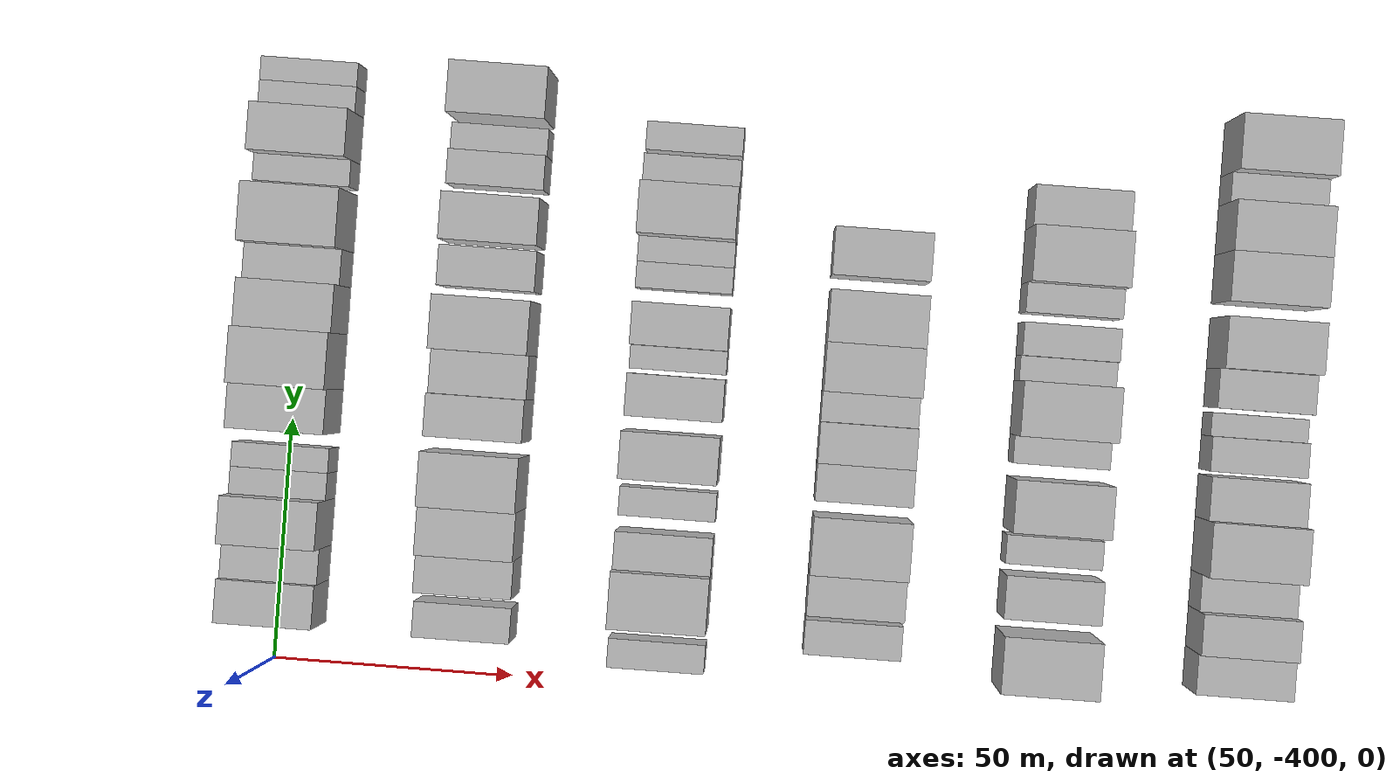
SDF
<sdf version="1.6">
 <world name="default">
  <model name="building_27">
   <static>1</static>
   <pose>50.0000 -387.3386 0 0.000000 0.000000 0.000000</pose>
   <link name="link">
    <pose>0 0 9.00 0 0 0</pose>
    <collision name="collision"><geometry><box><size>20.0000 8.8899 18.0000</size></box></geometry></collision>
    <visual name="visual">
     <cast_shadows>0</cast_shadows>
     <geometry><box><size>20.0000 8.8899 18.0000</size></box></geometry>
     <material>
      <script>
       <uri>model://HANNAS_wall/materials/scripts</uri>
       <uri>model://HANNAS_wall/materials/textures</uri>
       <name>vrc/HANNAS_wall</name>
      </script>
     </material>
    </visual>
   </link>
  </model>
  <model name="building_28">
   <static>1</static>
   <pose>50.0000 -379.2376 0 0.000000 0.000000 0.000000</pose>
   <link name="link">
    <pose>0 0 7.50 0 0 0</pose>
    <collision name="collision"><geometry><box><size>20.0000 7.3122 15.0000</size></box></geometry></collision>
    <visual name="visual">
     <cast_shadows>0</cast_shadows>
     <geometry><box><size>20.0000 7.3122 15.0000</size></box></geometry>
     <material>
      <script>
       <uri>model://HANNAS_wall/materials/scripts</uri>
       <uri>model://HANNAS_wall/materials/textures</uri>
       <name>vrc/HANNAS_wall</name>
      </script>
     </material>
    </visual>
   </link>
  </model>
  <model name="building_29">
   <static>1</static>
   <pose>50.0000 -370.6812 0 0.000000 0.000000 0.000000</pose>
   <link name="link">
    <pose>0 0 10.50 0 0 0</pose>
    <collision name="collision"><geometry><box><size>20.0000 9.8005 21.0000</size></box></geometry></collision>
    <visual name="visual">
     <cast_shadows>0</cast_shadows>
     <geometry><box><size>20.0000 9.8005 21.0000</size></box></geometry>
     <material>
      <script>
       <uri>model://HANNAS_wall/materials/scripts</uri>
       <uri>model://HANNAS_wall/materials/textures</uri>
       <name>vrc/HANNAS_wall</name>
      </script>
     </material>
    </visual>
   </link>
  </model>
  <model name="building_30">
   <static>1</static>
   <pose>50.0000 -362.9657 0 0.000000 0.000000 0.000000</pose>
   <link name="link">
    <pose>0 0 6.00 0 0 0</pose>
    <collision name="collision"><geometry><box><size>20.0000 5.6305 12.0000</size></box></geometry></collision>
    <visual name="visual">
     <cast_shadows>0</cast_shadows>
     <geometry><box><size>20.0000 5.6305 12.0000</size></box></geometry>
     <material>
      <script>
       <uri>model://HANNAS_wall/materials/scripts</uri>
       <uri>model://HANNAS_wall/materials/textures</uri>
       <name>vrc/HANNAS_wall</name>
      </script>
     </material>
    </visual>
   </link>
  </model>
  <model name="building_31">
   <static>1</static>
   <pose>50.0000 -357.5958 0 0.000000 0.000000 0.000000</pose>
   <link name="link">
    <pose>0 0 6.00 0 0 0</pose>
    <collision name="collision"><geometry><box><size>20.0000 5.1092 12.0000</size></box></geometry></collision>
    <visual name="visual">
     <cast_shadows>0</cast_shadows>
     <geometry><box><size>20.0000 5.1092 12.0000</size></box></geometry>
     <material>
      <script>
       <uri>model://HANNAS_wall/materials/scripts</uri>
       <uri>model://HANNAS_wall/materials/textures</uri>
       <name>vrc/HANNAS_wall</name>
      </script>
     </material>
    </visual>
   </link>
  </model>
  <model name="building_32">
   <static>1</static>
   <pose>50.0000 -347.4738 0 0.000000 0.000000 0.000000</pose>
   <link name="link">
    <pose>0 0 10.50 0 0 0</pose>
    <collision name="collision"><geometry><box><size>20.0000 9.1349 21.0000</size></box></geometry></collision>
    <visual name="visual">
     <cast_shadows>0</cast_shadows>
     <geometry><box><size>20.0000 9.1349 21.0000</size></box></geometry>
     <material>
      <script>
       <uri>model://HANNAS_wall/materials/scripts</uri>
       <uri>model://HANNAS_wall/materials/textures</uri>
       <name>vrc/HANNAS_wall</name>
      </script>
     </material>
    </visual>
   </link>
  </model>
  <model name="building_33">
   <static>1</static>
   <pose>50.0000 -337.1691 0 0.000000 0.000000 0.000000</pose>
   <link name="link">
    <pose>0 0 12.00 0 0 0</pose>
    <collision name="collision"><geometry><box><size>20.0000 11.4745 24.0000</size></box></geometry></collision>
    <visual name="visual">
     <cast_shadows>0</cast_shadows>
     <geometry><box><size>20.0000 11.4745 24.0000</size></box></geometry>
     <material>
      <script>
       <uri>model://HANNAS_wall/materials/scripts</uri>
       <uri>model://HANNAS_wall/materials/textures</uri>
       <name>vrc/HANNAS_wall</name>
      </script>
     </material>
    </visual>
   </link>
  </model>
  <model name="building_34">
   <static>1</static>
   <pose>50.0000 -326.5298 0 0.000000 0.000000 0.000000</pose>
   <link name="link">
    <pose>0 0 10.50 0 0 0</pose>
    <collision name="collision"><geometry><box><size>20.0000 9.8041 21.0000</size></box></geometry></collision>
    <visual name="visual">
     <cast_shadows>0</cast_shadows>
     <geometry><box><size>20.0000 9.8041 21.0000</size></box></geometry>
     <material>
      <script>
       <uri>model://HANNAS_wall/materials/scripts</uri>
       <uri>model://HANNAS_wall/materials/textures</uri>
       <name>vrc/HANNAS_wall</name>
      </script>
     </material>
    </visual>
   </link>
  </model>
  <model name="building_35">
   <static>1</static>
   <pose>50.0000 -317.9521 0 0.000000 0.000000 0.000000</pose>
   <link name="link">
    <pose>0 0 7.50 0 0 0</pose>
    <collision name="collision"><geometry><box><size>20.0000 7.3512 15.0000</size></box></geometry></collision>
    <visual name="visual">
     <cast_shadows>0</cast_shadows>
     <geometry><box><size>20.0000 7.3512 15.0000</size></box></geometry>
     <material>
      <script>
       <uri>model://HANNAS_wall/materials/scripts</uri>
       <uri>model://HANNAS_wall/materials/textures</uri>
       <name>vrc/HANNAS_wall</name>
      </script>
     </material>
    </visual>
   </link>
  </model>
  <model name="building_36">
   <static>1</static>
   <pose>50.0000 -308.2831 0 0.000000 0.000000 0.000000</pose>
   <link name="link">
    <pose>0 0 12.00 0 0 0</pose>
    <collision name="collision"><geometry><box><size>20.0000 11.9869 24.0000</size></box></geometry></collision>
    <visual name="visual">
     <cast_shadows>0</cast_shadows>
     <geometry><box><size>20.0000 11.9869 24.0000</size></box></geometry>
     <material>
      <script>
       <uri>model://HANNAS_wall/materials/scripts</uri>
       <uri>model://HANNAS_wall/materials/textures</uri>
       <name>vrc/HANNAS_wall</name>
      </script>
     </material>
    </visual>
   </link>
  </model>
  <model name="building_37">
   <static>1</static>
   <pose>50.0000 -298.5193 0 0.000000 0.000000 0.000000</pose>
   <link name="link">
    <pose>0 0 6.00 0 0 0</pose>
    <collision name="collision"><geometry><box><size>20.0000 5.5406 12.0000</size></box></geometry></collision>
    <visual name="visual">
     <cast_shadows>0</cast_shadows>
     <geometry><box><size>20.0000 5.5406 12.0000</size></box></geometry>
     <material>
      <script>
       <uri>model://HANNAS_wall/materials/scripts</uri>
       <uri>model://HANNAS_wall/materials/textures</uri>
       <name>vrc/HANNAS_wall</name>
      </script>
     </material>
    </visual>
   </link>
  </model>
  <model name="building_38">
   <static>1</static>
   <pose>50.0000 -290.8896 0 0.000000 0.000000 0.000000</pose>
   <link name="link">
    <pose>0 0 10.50 0 0 0</pose>
    <collision name="collision"><geometry><box><size>20.0000 9.7188 21.0000</size></box></geometry></collision>
    <visual name="visual">
     <cast_shadows>0</cast_shadows>
     <geometry><box><size>20.0000 9.7188 21.0000</size></box></geometry>
     <material>
      <script>
       <uri>model://HANNAS_wall/materials/scripts</uri>
       <uri>model://HANNAS_wall/materials/textures</uri>
       <name>vrc/HANNAS_wall</name>
      </script>
     </material>
    </visual>
   </link>
  </model>
  <model name="building_39">
   <static>1</static>
   <pose>50.0000 -283.3686 0 0.000000 0.000000 0.000000</pose>
   <link name="link">
    <pose>0 0 6.00 0 0 0</pose>
    <collision name="collision"><geometry><box><size>20.0000 5.3231 12.0000</size></box></geometry></collision>
    <visual name="visual">
     <cast_shadows>0</cast_shadows>
     <geometry><box><size>20.0000 5.3231 12.0000</size></box></geometry>
     <material>
      <script>
       <uri>model://HANNAS_wall/materials/scripts</uri>
       <uri>model://HANNAS_wall/materials/textures</uri>
       <name>vrc/HANNAS_wall</name>
      </script>
     </material>
    </visual>
   </link>
  </model>
  <model name="building_40">
   <static>1</static>
   <pose>50.0000 -278.2641 0 0.000000 0.000000 0.000000</pose>
   <link name="link">
    <pose>0 0 6.00 0 0 0</pose>
    <collision name="collision"><geometry><box><size>20.0000 4.8858 12.0000</size></box></geometry></collision>
    <visual name="visual">
     <cast_shadows>0</cast_shadows>
     <geometry><box><size>20.0000 4.8858 12.0000</size></box></geometry>
     <material>
      <script>
       <uri>model://HANNAS_wall/materials/scripts</uri>
       <uri>model://HANNAS_wall/materials/textures</uri>
       <name>vrc/HANNAS_wall</name>
      </script>
     </material>
    </visual>
   </link>
  </model>
  <model name="building_167">
   <static>1</static>
   <pose>90.0000 -388.2750 0 0.000000 0.000000 0.000000</pose>
   <link name="link">
    <pose>0 0 7.50 0 0 0</pose>
    <collision name="collision"><geometry><box><size>20.0000 7.3027 15.0000</size></box></geometry></collision>
    <visual name="visual">
     <cast_shadows>0</cast_shadows>
     <geometry><box><size>20.0000 7.3027 15.0000</size></box></geometry>
     <material>
      <script>
       <uri>model://HANNAS_wall/materials/scripts</uri>
       <uri>model://HANNAS_wall/materials/textures</uri>
       <name>vrc/HANNAS_wall</name>
      </script>
     </material>
    </visual>
   </link>
  </model>
  <model name="building_168">
   <static>1</static>
   <pose>90.0000 -378.7106 0 0.000000 0.000000 0.000000</pose>
   <link name="link">
    <pose>0 0 9.00 0 0 0</pose>
    <collision name="collision"><geometry><box><size>20.0000 7.8261 18.0000</size></box></geometry></collision>
    <visual name="visual">
     <cast_shadows>0</cast_shadows>
     <geometry><box><size>20.0000 7.8261 18.0000</size></box></geometry>
     <material>
      <script>
       <uri>model://HANNAS_wall/materials/scripts</uri>
       <uri>model://HANNAS_wall/materials/textures</uri>
       <name>vrc/HANNAS_wall</name>
      </script>
     </material>
    </visual>
   </link>
  </model>
  <model name="building_169">
   <static>1</static>
   <pose>90.0000 -369.8301 0 0.000000 0.000000 0.000000</pose>
   <link name="link">
    <pose>0 0 10.50 0 0 0</pose>
    <collision name="collision"><geometry><box><size>20.0000 9.9350 21.0000</size></box></geometry></collision>
    <visual name="visual">
     <cast_shadows>0</cast_shadows>
     <geometry><box><size>20.0000 9.9350 21.0000</size></box></geometry>
     <material>
      <script>
       <uri>model://HANNAS_wall/materials/scripts</uri>
       <uri>model://HANNAS_wall/materials/textures</uri>
       <name>vrc/HANNAS_wall</name>
      </script>
     </material>
    </visual>
   </link>
  </model>
  <model name="building_170">
   <static>1</static>
   <pose>90.0000 -359.2874 0 0.000000 0.000000 0.000000</pose>
   <link name="link">
    <pose>0 0 12.00 0 0 0</pose>
    <collision name="collision"><geometry><box><size>20.0000 11.1504 24.0000</size></box></geometry></collision>
    <visual name="visual">
     <cast_shadows>0</cast_shadows>
     <geometry><box><size>20.0000 11.1504 24.0000</size></box></geometry>
     <material>
      <script>
       <uri>model://HANNAS_wall/materials/scripts</uri>
       <uri>model://HANNAS_wall/materials/textures</uri>
       <name>vrc/HANNAS_wall</name>
      </script>
     </material>
    </visual>
   </link>
  </model>
  <model name="building_171">
   <static>1</static>
   <pose>90.0000 -346.3574 0 0.000000 0.000000 0.000000</pose>
   <link name="link">
    <pose>0 0 10.50 0 0 0</pose>
    <collision name="collision"><geometry><box><size>20.0000 8.7096 21.0000</size></box></geometry></collision>
    <visual name="visual">
     <cast_shadows>0</cast_shadows>
     <geometry><box><size>20.0000 8.7096 21.0000</size></box></geometry>
     <material>
      <script>
       <uri>model://HANNAS_wall/materials/scripts</uri>
       <uri>model://HANNAS_wall/materials/textures</uri>
       <name>vrc/HANNAS_wall</name>
      </script>
     </material>
    </visual>
   </link>
  </model>
  <model name="building_172">
   <static>1</static>
   <pose>90.0000 -337.5082 0 0.000000 0.000000 0.000000</pose>
   <link name="link">
    <pose>0 0 9.00 0 0 0</pose>
    <collision name="collision"><geometry><box><size>20.0000 8.9888 18.0000</size></box></geometry></collision>
    <visual name="visual">
     <cast_shadows>0</cast_shadows>
     <geometry><box><size>20.0000 8.9888 18.0000</size></box></geometry>
     <material>
      <script>
       <uri>model://HANNAS_wall/materials/scripts</uri>
       <uri>model://HANNAS_wall/materials/textures</uri>
       <name>vrc/HANNAS_wall</name>
      </script>
     </material>
    </visual>
   </link>
  </model>
  <model name="building_173">
   <static>1</static>
   <pose>90.0000 -327.5312 0 0.000000 0.000000 0.000000</pose>
   <link name="link">
    <pose>0 0 12.00 0 0 0</pose>
    <collision name="collision"><geometry><box><size>20.0000 10.9650 24.0000</size></box></geometry></collision>
    <visual name="visual">
     <cast_shadows>0</cast_shadows>
     <geometry><box><size>20.0000 10.9650 24.0000</size></box></geometry>
     <material>
      <script>
       <uri>model://HANNAS_wall/materials/scripts</uri>
       <uri>model://HANNAS_wall/materials/textures</uri>
       <name>vrc/HANNAS_wall</name>
      </script>
     </material>
    </visual>
   </link>
  </model>
  <model name="building_174">
   <static>1</static>
   <pose>90.0000 -315.9036 0 0.000000 0.000000 0.000000</pose>
   <link name="link">
    <pose>0 0 9.00 0 0 0</pose>
    <collision name="collision"><geometry><box><size>20.0000 8.2903 18.0000</size></box></geometry></collision>
    <visual name="visual">
     <cast_shadows>0</cast_shadows>
     <geometry><box><size>20.0000 8.2903 18.0000</size></box></geometry>
     <material>
      <script>
       <uri>model://HANNAS_wall/materials/scripts</uri>
       <uri>model://HANNAS_wall/materials/textures</uri>
       <name>vrc/HANNAS_wall</name>
      </script>
     </material>
    </visual>
   </link>
  </model>
  <model name="building_175">
   <static>1</static>
   <pose>90.0000 -305.9424 0 0.000000 0.000000 0.000000</pose>
   <link name="link">
    <pose>0 0 10.50 0 0 0</pose>
    <collision name="collision"><geometry><box><size>20.0000 9.6320 21.0000</size></box></geometry></collision>
    <visual name="visual">
     <cast_shadows>0</cast_shadows>
     <geometry><box><size>20.0000 9.6320 21.0000</size></box></geometry>
     <material>
      <script>
       <uri>model://HANNAS_wall/materials/scripts</uri>
       <uri>model://HANNAS_wall/materials/textures</uri>
       <name>vrc/HANNAS_wall</name>
      </script>
     </material>
    </visual>
   </link>
  </model>
  <model name="building_176">
   <static>1</static>
   <pose>90.0000 -295.5863 0 0.000000 0.000000 0.000000</pose>
   <link name="link">
    <pose>0 0 7.50 0 0 0</pose>
    <collision name="collision"><geometry><box><size>20.0000 7.0801 15.0000</size></box></geometry></collision>
    <visual name="visual">
     <cast_shadows>0</cast_shadows>
     <geometry><box><size>20.0000 7.0801 15.0000</size></box></geometry>
     <material>
      <script>
       <uri>model://HANNAS_wall/materials/scripts</uri>
       <uri>model://HANNAS_wall/materials/textures</uri>
       <name>vrc/HANNAS_wall</name>
      </script>
     </material>
    </visual>
   </link>
  </model>
  <model name="building_177">
   <static>1</static>
   <pose>90.0000 -289.2132 0 0.000000 0.000000 0.000000</pose>
   <link name="link">
    <pose>0 0 6.00 0 0 0</pose>
    <collision name="collision"><geometry><box><size>20.0000 5.6662 12.0000</size></box></geometry></collision>
    <visual name="visual">
     <cast_shadows>0</cast_shadows>
     <geometry><box><size>20.0000 5.6662 12.0000</size></box></geometry>
     <material>
      <script>
       <uri>model://HANNAS_wall/materials/scripts</uri>
       <uri>model://HANNAS_wall/materials/textures</uri>
       <name>vrc/HANNAS_wall</name>
      </script>
     </material>
    </visual>
   </link>
  </model>
  <model name="building_178">
   <static>1</static>
   <pose>90.0000 -280.1520 0 0.000000 0.000000 0.000000</pose>
   <link name="link">
    <pose>0 0 12.00 0 0 0</pose>
    <collision name="collision"><geometry><box><size>20.0000 10.4561 24.0000</size></box></geometry></collision>
    <visual name="visual">
     <cast_shadows>0</cast_shadows>
     <geometry><box><size>20.0000 10.4561 24.0000</size></box></geometry>
     <material>
      <script>
       <uri>model://HANNAS_wall/materials/scripts</uri>
       <uri>model://HANNAS_wall/materials/textures</uri>
       <name>vrc/HANNAS_wall</name>
      </script>
     </material>
    </visual>
   </link>
  </model>
  <model name="building_299">
   <static>1</static>
   <pose>130.0000 -392.4256 0 0.000000 0.000000 0.000000</pose>
   <link name="link">
    <pose>0 0 6.00 0 0 0</pose>
    <collision name="collision"><geometry><box><size>20.0000 5.9776 12.0000</size></box></geometry></collision>
    <visual name="visual">
     <cast_shadows>0</cast_shadows>
     <geometry><box><size>20.0000 5.9776 12.0000</size></box></geometry>
     <material>
      <script>
       <uri>model://HANNAS_wall/materials/scripts</uri>
       <uri>model://HANNAS_wall/materials/textures</uri>
       <name>vrc/HANNAS_wall</name>
      </script>
     </material>
    </visual>
   </link>
  </model>
  <model name="building_300">
   <static>1</static>
   <pose>130.0000 -380.6523 0 0.000000 0.000000 0.000000</pose>
   <link name="link">
    <pose>0 0 12.00 0 0 0</pose>
    <collision name="collision"><geometry><box><size>20.0000 11.5692 24.0000</size></box></geometry></collision>
    <visual name="visual">
     <cast_shadows>0</cast_shadows>
     <geometry><box><size>20.0000 11.5692 24.0000</size></box></geometry>
     <material>
      <script>
       <uri>model://HANNAS_wall/materials/scripts</uri>
       <uri>model://HANNAS_wall/materials/textures</uri>
       <name>vrc/HANNAS_wall</name>
      </script>
     </material>
    </visual>
   </link>
  </model>
  <model name="building_301">
   <static>1</static>
   <pose>130.0000 -370.9849 0 0.000000 0.000000 0.000000</pose>
   <link name="link">
    <pose>0 0 9.00 0 0 0</pose>
    <collision name="collision"><geometry><box><size>20.0000 7.7655 18.0000</size></box></geometry></collision>
    <visual name="visual">
     <cast_shadows>0</cast_shadows>
     <geometry><box><size>20.0000 7.7655 18.0000</size></box></geometry>
     <material>
      <script>
       <uri>model://HANNAS_wall/materials/scripts</uri>
       <uri>model://HANNAS_wall/materials/textures</uri>
       <name>vrc/HANNAS_wall</name>
      </script>
     </material>
    </visual>
   </link>
  </model>
  <model name="building_302">
   <static>1</static>
   <pose>130.0000 -361.1385 0 0.000000 0.000000 0.000000</pose>
   <link name="link">
    <pose>0 0 6.00 0 0 0</pose>
    <collision name="collision"><geometry><box><size>20.0000 5.9273 12.0000</size></box></geometry></collision>
    <visual name="visual">
     <cast_shadows>0</cast_shadows>
     <geometry><box><size>20.0000 5.9273 12.0000</size></box></geometry>
     <material>
      <script>
       <uri>model://HANNAS_wall/materials/scripts</uri>
       <uri>model://HANNAS_wall/materials/textures</uri>
       <name>vrc/HANNAS_wall</name>
      </script>
     </material>
    </visual>
   </link>
  </model>
  <model name="building_303">
   <static>1</static>
   <pose>130.0000 -351.3727 0 0.000000 0.000000 0.000000</pose>
   <link name="link">
    <pose>0 0 12.00 0 0 0</pose>
    <collision name="collision"><geometry><box><size>20.0000 9.6043 24.0000</size></box></geometry></collision>
    <visual name="visual">
     <cast_shadows>0</cast_shadows>
     <geometry><box><size>20.0000 9.6043 24.0000</size></box></geometry>
     <material>
      <script>
       <uri>model://HANNAS_wall/materials/scripts</uri>
       <uri>model://HANNAS_wall/materials/textures</uri>
       <name>vrc/HANNAS_wall</name>
      </script>
     </material>
    </visual>
   </link>
  </model>
  <model name="building_304">
   <static>1</static>
   <pose>130.0000 -339.2307 0 0.000000 0.000000 0.000000</pose>
   <link name="link">
    <pose>0 0 9.00 0 0 0</pose>
    <collision name="collision"><geometry><box><size>20.0000 8.6798 18.0000</size></box></geometry></collision>
    <visual name="visual">
     <cast_shadows>0</cast_shadows>
     <geometry><box><size>20.0000 8.6798 18.0000</size></box></geometry>
     <material>
      <script>
       <uri>model://HANNAS_wall/materials/scripts</uri>
       <uri>model://HANNAS_wall/materials/textures</uri>
       <name>vrc/HANNAS_wall</name>
      </script>
     </material>
    </visual>
   </link>
  </model>
  <model name="building_305">
   <static>1</static>
   <pose>130.0000 -331.4749 0 0.000000 0.000000 0.000000</pose>
   <link name="link">
    <pose>0 0 6.00 0 0 0</pose>
    <collision name="collision"><geometry><box><size>20.0000 4.8317 12.0000</size></box></geometry></collision>
    <visual name="visual">
     <cast_shadows>0</cast_shadows>
     <geometry><box><size>20.0000 4.8317 12.0000</size></box></geometry>
     <material>
      <script>
       <uri>model://HANNAS_wall/materials/scripts</uri>
       <uri>model://HANNAS_wall/materials/textures</uri>
       <name>vrc/HANNAS_wall</name>
      </script>
     </material>
    </visual>
   </link>
  </model>
  <model name="building_306">
   <static>1</static>
   <pose>130.0000 -324.6802 0 0.000000 0.000000 0.000000</pose>
   <link name="link">
    <pose>0 0 9.00 0 0 0</pose>
    <collision name="collision"><geometry><box><size>20.0000 8.7577 18.0000</size></box></geometry></collision>
    <visual name="visual">
     <cast_shadows>0</cast_shadows>
     <geometry><box><size>20.0000 8.7577 18.0000</size></box></geometry>
     <material>
      <script>
       <uri>model://HANNAS_wall/materials/scripts</uri>
       <uri>model://HANNAS_wall/materials/textures</uri>
       <name>vrc/HANNAS_wall</name>
      </script>
     </material>
    </visual>
   </link>
  </model>
  <model name="building_307">
   <static>1</static>
   <pose>130.0000 -314.5942 0 0.000000 0.000000 0.000000</pose>
   <link name="link">
    <pose>0 0 6.00 0 0 0</pose>
    <collision name="collision"><geometry><box><size>20.0000 5.4141 12.0000</size></box></geometry></collision>
    <visual name="visual">
     <cast_shadows>0</cast_shadows>
     <geometry><box><size>20.0000 5.4141 12.0000</size></box></geometry>
     <material>
      <script>
       <uri>model://HANNAS_wall/materials/scripts</uri>
       <uri>model://HANNAS_wall/materials/textures</uri>
       <name>vrc/HANNAS_wall</name>
      </script>
     </material>
    </visual>
   </link>
  </model>
  <model name="building_308">
   <static>1</static>
   <pose>130.0000 -309.2707 0 0.000000 0.000000 0.000000</pose>
   <link name="link">
    <pose>0 0 6.00 0 0 0</pose>
    <collision name="collision"><geometry><box><size>20.0000 5.2329 12.0000</size></box></geometry></collision>
    <visual name="visual">
     <cast_shadows>0</cast_shadows>
     <geometry><box><size>20.0000 5.2329 12.0000</size></box></geometry>
     <material>
      <script>
       <uri>model://HANNAS_wall/materials/scripts</uri>
       <uri>model://HANNAS_wall/materials/textures</uri>
       <name>vrc/HANNAS_wall</name>
      </script>
     </material>
    </visual>
   </link>
  </model>
  <model name="building_309">
   <static>1</static>
   <pose>130.0000 -301.3387 0 0.000000 0.000000 0.000000</pose>
   <link name="link">
    <pose>0 0 12.00 0 0 0</pose>
    <collision name="collision"><geometry><box><size>20.0000 10.6312 24.0000</size></box></geometry></collision>
    <visual name="visual">
     <cast_shadows>0</cast_shadows>
     <geometry><box><size>20.0000 10.6312 24.0000</size></box></geometry>
     <material>
      <script>
       <uri>model://HANNAS_wall/materials/scripts</uri>
       <uri>model://HANNAS_wall/materials/textures</uri>
       <name>vrc/HANNAS_wall</name>
      </script>
     </material>
    </visual>
   </link>
  </model>
  <model name="building_310">
   <static>1</static>
   <pose>130.0000 -292.9895 0 0.000000 0.000000 0.000000</pose>
   <link name="link">
    <pose>0 0 7.50 0 0 0</pose>
    <collision name="collision"><geometry><box><size>20.0000 6.0672 15.0000</size></box></geometry></collision>
    <visual name="visual">
     <cast_shadows>0</cast_shadows>
     <geometry><box><size>20.0000 6.0672 15.0000</size></box></geometry>
     <material>
      <script>
       <uri>model://HANNAS_wall/materials/scripts</uri>
       <uri>model://HANNAS_wall/materials/textures</uri>
       <name>vrc/HANNAS_wall</name>
      </script>
     </material>
    </visual>
   </link>
  </model>
  <model name="building_311">
   <static>1</static>
   <pose>130.0000 -286.0314 0 0.000000 0.000000 0.000000</pose>
   <link name="link">
    <pose>0 0 6.00 0 0 0</pose>
    <collision name="collision"><geometry><box><size>20.0000 5.8489 12.0000</size></box></geometry></collision>
    <visual name="visual">
     <cast_shadows>0</cast_shadows>
     <geometry><box><size>20.0000 5.8489 12.0000</size></box></geometry>
     <material>
      <script>
       <uri>model://HANNAS_wall/materials/scripts</uri>
       <uri>model://HANNAS_wall/materials/textures</uri>
       <name>vrc/HANNAS_wall</name>
      </script>
     </material>
    </visual>
   </link>
  </model>
  <model name="building_429">
   <static>1</static>
   <pose>170.0000 -385.8225 0 0.000000 0.000000 0.000000</pose>
   <link name="link">
    <pose>0 0 7.50 0 0 0</pose>
    <collision name="collision"><geometry><box><size>20.0000 7.0767 15.0000</size></box></geometry></collision>
    <visual name="visual">
     <cast_shadows>0</cast_shadows>
     <geometry><box><size>20.0000 7.0767 15.0000</size></box></geometry>
     <material>
      <script>
       <uri>model://HANNAS_wall/materials/scripts</uri>
       <uri>model://HANNAS_wall/materials/textures</uri>
       <name>vrc/HANNAS_wall</name>
      </script>
     </material>
    </visual>
   </link>
  </model>
  <model name="building_430">
   <static>1</static>
   <pose>170.0000 -376.9427 0 0.000000 0.000000 0.000000</pose>
   <link name="link">
    <pose>0 0 9.00 0 0 0</pose>
    <collision name="collision"><geometry><box><size>20.0000 8.6830 18.0000</size></box></geometry></collision>
    <visual name="visual">
     <cast_shadows>0</cast_shadows>
     <geometry><box><size>20.0000 8.6830 18.0000</size></box></geometry>
     <material>
      <script>
       <uri>model://HANNAS_wall/materials/scripts</uri>
       <uri>model://HANNAS_wall/materials/textures</uri>
       <name>vrc/HANNAS_wall</name>
      </script>
     </material>
    </visual>
   </link>
  </model>
  <model name="building_431">
   <static>1</static>
   <pose>170.0000 -366.7267 0 0.000000 0.000000 0.000000</pose>
   <link name="link">
    <pose>0 0 12.00 0 0 0</pose>
    <collision name="collision"><geometry><box><size>20.0000 11.7490 24.0000</size></box></geometry></collision>
    <visual name="visual">
     <cast_shadows>0</cast_shadows>
     <geometry><box><size>20.0000 11.7490 24.0000</size></box></geometry>
     <material>
      <script>
       <uri>model://HANNAS_wall/materials/scripts</uri>
       <uri>model://HANNAS_wall/materials/textures</uri>
       <name>vrc/HANNAS_wall</name>
      </script>
     </material>
    </visual>
   </link>
  </model>
  <model name="building_432">
   <static>1</static>
   <pose>170.0000 -354.0505 0 0.000000 0.000000 0.000000</pose>
   <link name="link">
    <pose>0 0 9.00 0 0 0</pose>
    <collision name="collision"><geometry><box><size>20.0000 7.6032 18.0000</size></box></geometry></collision>
    <visual name="visual">
     <cast_shadows>0</cast_shadows>
     <geometry><box><size>20.0000 7.6032 18.0000</size></box></geometry>
     <material>
      <script>
       <uri>model://HANNAS_wall/materials/scripts</uri>
       <uri>model://HANNAS_wall/materials/textures</uri>
       <name>vrc/HANNAS_wall</name>
      </script>
     </material>
    </visual>
   </link>
  </model>
  <model name="building_433">
   <static>1</static>
   <pose>170.0000 -346.0285 0 0.000000 0.000000 0.000000</pose>
   <link name="link">
    <pose>0 0 9.00 0 0 0</pose>
    <collision name="collision"><geometry><box><size>20.0000 8.4407 18.0000</size></box></geometry></collision>
    <visual name="visual">
     <cast_shadows>0</cast_shadows>
     <geometry><box><size>20.0000 8.4407 18.0000</size></box></geometry>
     <material>
      <script>
       <uri>model://HANNAS_wall/materials/scripts</uri>
       <uri>model://HANNAS_wall/materials/textures</uri>
       <name>vrc/HANNAS_wall</name>
      </script>
     </material>
    </visual>
   </link>
  </model>
  <model name="building_434">
   <static>1</static>
   <pose>170.0000 -338.6864 0 0.000000 0.000000 0.000000</pose>
   <link name="link">
    <pose>0 0 7.50 0 0 0</pose>
    <collision name="collision"><geometry><box><size>20.0000 6.2435 15.0000</size></box></geometry></collision>
    <visual name="visual">
     <cast_shadows>0</cast_shadows>
     <geometry><box><size>20.0000 6.2435 15.0000</size></box></geometry>
     <material>
      <script>
       <uri>model://HANNAS_wall/materials/scripts</uri>
       <uri>model://HANNAS_wall/materials/textures</uri>
       <name>vrc/HANNAS_wall</name>
      </script>
     </material>
    </visual>
   </link>
  </model>
  <model name="building_435">
   <static>1</static>
   <pose>170.0000 -330.5751 0 0.000000 0.000000 0.000000</pose>
   <link name="link">
    <pose>0 0 12.00 0 0 0</pose>
    <collision name="collision"><geometry><box><size>20.0000 9.9790 24.0000</size></box></geometry></collision>
    <visual name="visual">
     <cast_shadows>0</cast_shadows>
     <geometry><box><size>20.0000 9.9790 24.0000</size></box></geometry>
     <material>
      <script>
       <uri>model://HANNAS_wall/materials/scripts</uri>
       <uri>model://HANNAS_wall/materials/textures</uri>
       <name>vrc/HANNAS_wall</name>
      </script>
     </material>
    </visual>
   </link>
  </model>
  <model name="building_436">
   <static>1</static>
   <pose>170.0000 -320.2825 0 0.000000 0.000000 0.000000</pose>
   <link name="link">
    <pose>0 0 12.00 0 0 0</pose>
    <collision name="collision"><geometry><box><size>20.0000 10.6062 24.0000</size></box></geometry></collision>
    <visual name="visual">
     <cast_shadows>0</cast_shadows>
     <geometry><box><size>20.0000 10.6062 24.0000</size></box></geometry>
     <material>
      <script>
       <uri>model://HANNAS_wall/materials/scripts</uri>
       <uri>model://HANNAS_wall/materials/textures</uri>
       <name>vrc/HANNAS_wall</name>
      </script>
     </material>
    </visual>
   </link>
  </model>
  <model name="building_437">
   <static>1</static>
   <pose>170.0000 -307.0733 0 0.000000 0.000000 0.000000</pose>
   <link name="link">
    <pose>0 0 10.50 0 0 0</pose>
    <collision name="collision"><geometry><box><size>20.0000 9.8121 21.0000</size></box></geometry></collision>
    <visual name="visual">
     <cast_shadows>0</cast_shadows>
     <geometry><box><size>20.0000 9.8121 21.0000</size></box></geometry>
     <material>
      <script>
       <uri>model://HANNAS_wall/materials/scripts</uri>
       <uri>model://HANNAS_wall/materials/textures</uri>
       <name>vrc/HANNAS_wall</name>
      </script>
     </material>
    </visual>
   </link>
  </model>
  <model name="building_556">
   <static>1</static>
   <pose>210.0000 -387.6806 0 0.000000 0.000000 0.000000</pose>
   <link name="link">
    <pose>0 0 12.00 0 0 0</pose>
    <collision name="collision"><geometry><box><size>20.0000 11.6092 24.0000</size></box></geometry></collision>
    <visual name="visual">
     <cast_shadows>0</cast_shadows>
     <geometry><box><size>20.0000 11.6092 24.0000</size></box></geometry>
     <material>
      <script>
       <uri>model://HANNAS_wall/materials/scripts</uri>
       <uri>model://HANNAS_wall/materials/textures</uri>
       <name>vrc/HANNAS_wall</name>
      </script>
     </material>
    </visual>
   </link>
  </model>
  <model name="building_557">
   <static>1</static>
   <pose>210.0000 -374.4348 0 0.000000 0.000000 0.000000</pose>
   <link name="link">
    <pose>0 0 9.00 0 0 0</pose>
    <collision name="collision"><geometry><box><size>20.0000 8.8822 18.0000</size></box></geometry></collision>
    <visual name="visual">
     <cast_shadows>0</cast_shadows>
     <geometry><box><size>20.0000 8.8822 18.0000</size></box></geometry>
     <material>
      <script>
       <uri>model://HANNAS_wall/materials/scripts</uri>
       <uri>model://HANNAS_wall/materials/textures</uri>
       <name>vrc/HANNAS_wall</name>
      </script>
     </material>
    </visual>
   </link>
  </model>
  <model name="building_558">
   <static>1</static>
   <pose>210.0000 -365.0340 0 0.000000 0.000000 0.000000</pose>
   <link name="link">
    <pose>0 0 6.00 0 0 0</pose>
    <collision name="collision"><geometry><box><size>20.0000 5.9195 12.0000</size></box></geometry></collision>
    <visual name="visual">
     <cast_shadows>0</cast_shadows>
     <geometry><box><size>20.0000 5.9195 12.0000</size></box></geometry>
     <material>
      <script>
       <uri>model://HANNAS_wall/materials/scripts</uri>
       <uri>model://HANNAS_wall/materials/textures</uri>
       <name>vrc/HANNAS_wall</name>
      </script>
     </material>
    </visual>
   </link>
  </model>
  <model name="building_559">
   <static>1</static>
   <pose>210.0000 -355.7057 0 0.000000 0.000000 0.000000</pose>
   <link name="link">
    <pose>0 0 12.00 0 0 0</pose>
    <collision name="collision"><geometry><box><size>20.0000 10.7371 24.0000</size></box></geometry></collision>
    <visual name="visual">
     <cast_shadows>0</cast_shadows>
     <geometry><box><size>20.0000 10.7371 24.0000</size></box></geometry>
     <material>
      <script>
       <uri>model://HANNAS_wall/materials/scripts</uri>
       <uri>model://HANNAS_wall/materials/textures</uri>
       <name>vrc/HANNAS_wall</name>
      </script>
     </material>
    </visual>
   </link>
  </model>
  <model name="building_560">
   <static>1</static>
   <pose>210.0000 -344.4649 0 0.000000 0.000000 0.000000</pose>
   <link name="link">
    <pose>0 0 6.00 0 0 0</pose>
    <collision name="collision"><geometry><box><size>20.0000 5.7444 12.0000</size></box></geometry></collision>
    <visual name="visual">
     <cast_shadows>0</cast_shadows>
     <geometry><box><size>20.0000 5.7444 12.0000</size></box></geometry>
     <material>
      <script>
       <uri>model://HANNAS_wall/materials/scripts</uri>
       <uri>model://HANNAS_wall/materials/textures</uri>
       <name>vrc/HANNAS_wall</name>
      </script>
     </material>
    </visual>
   </link>
  </model>
  <model name="building_561">
   <static>1</static>
   <pose>210.0000 -335.9931 0 0.000000 0.000000 0.000000</pose>
   <link name="link">
    <pose>0 0 12.00 0 0 0</pose>
    <collision name="collision"><geometry><box><size>20.0000 11.1991 24.0000</size></box></geometry></collision>
    <visual name="visual">
     <cast_shadows>0</cast_shadows>
     <geometry><box><size>20.0000 11.1991 24.0000</size></box></geometry>
     <material>
      <script>
       <uri>model://HANNAS_wall/materials/scripts</uri>
       <uri>model://HANNAS_wall/materials/textures</uri>
       <name>vrc/HANNAS_wall</name>
      </script>
     </material>
    </visual>
   </link>
  </model>
  <model name="building_562">
   <static>1</static>
   <pose>210.0000 -327.8169 0 0.000000 0.000000 0.000000</pose>
   <link name="link">
    <pose>0 0 6.00 0 0 0</pose>
    <collision name="collision"><geometry><box><size>20.0000 5.1532 12.0000</size></box></geometry></collision>
    <visual name="visual">
     <cast_shadows>0</cast_shadows>
     <geometry><box><size>20.0000 5.1532 12.0000</size></box></geometry>
     <material>
      <script>
       <uri>model://HANNAS_wall/materials/scripts</uri>
       <uri>model://HANNAS_wall/materials/textures</uri>
       <name>vrc/HANNAS_wall</name>
      </script>
     </material>
    </visual>
   </link>
  </model>
  <model name="building_563">
   <static>1</static>
   <pose>210.0000 -321.8117 0 0.000000 0.000000 0.000000</pose>
   <link name="link">
    <pose>0 0 7.50 0 0 0</pose>
    <collision name="collision"><geometry><box><size>20.0000 6.8572 15.0000</size></box></geometry></collision>
    <visual name="visual">
     <cast_shadows>0</cast_shadows>
     <geometry><box><size>20.0000 6.8572 15.0000</size></box></geometry>
     <material>
      <script>
       <uri>model://HANNAS_wall/materials/scripts</uri>
       <uri>model://HANNAS_wall/materials/textures</uri>
       <name>vrc/HANNAS_wall</name>
      </script>
     </material>
    </visual>
   </link>
  </model>
  <model name="building_564">
   <static>1</static>
   <pose>210.0000 -313.3286 0 0.000000 0.000000 0.000000</pose>
   <link name="link">
    <pose>0 0 7.50 0 0 0</pose>
    <collision name="collision"><geometry><box><size>20.0000 6.1091 15.0000</size></box></geometry></collision>
    <visual name="visual">
     <cast_shadows>0</cast_shadows>
     <geometry><box><size>20.0000 6.1091 15.0000</size></box></geometry>
     <material>
      <script>
       <uri>model://HANNAS_wall/materials/scripts</uri>
       <uri>model://HANNAS_wall/materials/textures</uri>
       <name>vrc/HANNAS_wall</name>
      </script>
     </material>
    </visual>
   </link>
  </model>
  <model name="building_565">
   <static>1</static>
   <pose>210.0000 -304.5975 0 0.000000 0.000000 0.000000</pose>
   <link name="link">
    <pose>0 0 12.00 0 0 0</pose>
    <collision name="collision"><geometry><box><size>20.0000 11.3530 24.0000</size></box></geometry></collision>
    <visual name="visual">
     <cast_shadows>0</cast_shadows>
     <geometry><box><size>20.0000 11.3530 24.0000</size></box></geometry>
     <material>
      <script>
       <uri>model://HANNAS_wall/materials/scripts</uri>
       <uri>model://HANNAS_wall/materials/textures</uri>
       <name>vrc/HANNAS_wall</name>
      </script>
     </material>
    </visual>
   </link>
  </model>
  <model name="building_566">
   <static>1</static>
   <pose>210.0000 -294.7058 0 0.000000 0.000000 0.000000</pose>
   <link name="link">
    <pose>0 0 9.00 0 0 0</pose>
    <collision name="collision"><geometry><box><size>20.0000 8.4305 18.0000</size></box></geometry></collision>
    <visual name="visual">
     <cast_shadows>0</cast_shadows>
     <geometry><box><size>20.0000 8.4305 18.0000</size></box></geometry>
     <material>
      <script>
       <uri>model://HANNAS_wall/materials/scripts</uri>
       <uri>model://HANNAS_wall/materials/textures</uri>
       <name>vrc/HANNAS_wall</name>
      </script>
     </material>
    </visual>
   </link>
  </model>
  <model name="building_679">
   <static>1</static>
   <pose>250.0000 -387.1184 0 0.000000 0.000000 0.000000</pose>
   <link name="link">
    <pose>0 0 9.00 0 0 0</pose>
    <collision name="collision"><geometry><box><size>20.0000 8.2028 18.0000</size></box></geometry></collision>
    <visual name="visual">
     <cast_shadows>0</cast_shadows>
     <geometry><box><size>20.0000 8.2028 18.0000</size></box></geometry>
     <material>
      <script>
       <uri>model://HANNAS_wall/materials/scripts</uri>
       <uri>model://HANNAS_wall/materials/textures</uri>
       <name>vrc/HANNAS_wall</name>
      </script>
     </material>
    </visual>
   </link>
  </model>
  <model name="building_680">
   <static>1</static>
   <pose>250.0000 -378.8129 0 0.000000 0.000000 0.000000</pose>
   <link name="link">
    <pose>0 0 10.50 0 0 0</pose>
    <collision name="collision"><geometry><box><size>20.0000 8.4083 21.0000</size></box></geometry></collision>
    <visual name="visual">
     <cast_shadows>0</cast_shadows>
     <geometry><box><size>20.0000 8.4083 21.0000</size></box></geometry>
     <material>
      <script>
       <uri>model://HANNAS_wall/materials/scripts</uri>
       <uri>model://HANNAS_wall/materials/textures</uri>
       <name>vrc/HANNAS_wall</name>
      </script>
     </material>
    </visual>
   </link>
  </model>
  <model name="building_681">
   <static>1</static>
   <pose>250.0000 -370.8603 0 0.000000 0.000000 0.000000</pose>
   <link name="link">
    <pose>0 0 7.50 0 0 0</pose>
    <collision name="collision"><geometry><box><size>20.0000 7.4969 15.0000</size></box></geometry></collision>
    <visual name="visual">
     <cast_shadows>0</cast_shadows>
     <geometry><box><size>20.0000 7.4969 15.0000</size></box></geometry>
     <material>
      <script>
       <uri>model://HANNAS_wall/materials/scripts</uri>
       <uri>model://HANNAS_wall/materials/textures</uri>
       <name>vrc/HANNAS_wall</name>
      </script>
     </material>
    </visual>
   </link>
  </model>
  <model name="building_682">
   <static>1</static>
   <pose>250.0000 -361.5029 0 0.000000 0.000000 0.000000</pose>
   <link name="link">
    <pose>0 0 12.00 0 0 0</pose>
    <collision name="collision"><geometry><box><size>20.0000 11.2178 24.0000</size></box></geometry></collision>
    <visual name="visual">
     <cast_shadows>0</cast_shadows>
     <geometry><box><size>20.0000 11.2178 24.0000</size></box></geometry>
     <material>
      <script>
       <uri>model://HANNAS_wall/materials/scripts</uri>
       <uri>model://HANNAS_wall/materials/textures</uri>
       <name>vrc/HANNAS_wall</name>
      </script>
     </material>
    </visual>
   </link>
  </model>
  <model name="building_683">
   <static>1</static>
   <pose>250.0000 -351.4083 0 0.000000 0.000000 0.000000</pose>
   <link name="link">
    <pose>0 0 9.00 0 0 0</pose>
    <collision name="collision"><geometry><box><size>20.0000 8.9715 18.0000</size></box></geometry></collision>
    <visual name="visual">
     <cast_shadows>0</cast_shadows>
     <geometry><box><size>20.0000 8.9715 18.0000</size></box></geometry>
     <material>
      <script>
       <uri>model://HANNAS_wall/materials/scripts</uri>
       <uri>model://HANNAS_wall/materials/textures</uri>
       <name>vrc/HANNAS_wall</name>
      </script>
     </material>
    </visual>
   </link>
  </model>
  <model name="building_684">
   <static>1</static>
   <pose>250.0000 -342.3455 0 0.000000 0.000000 0.000000</pose>
   <link name="link">
    <pose>0 0 7.50 0 0 0</pose>
    <collision name="collision"><geometry><box><size>20.0000 7.1541 15.0000</size></box></geometry></collision>
    <visual name="visual">
     <cast_shadows>0</cast_shadows>
     <geometry><box><size>20.0000 7.1541 15.0000</size></box></geometry>
     <material>
      <script>
       <uri>model://HANNAS_wall/materials/scripts</uri>
       <uri>model://HANNAS_wall/materials/textures</uri>
       <name>vrc/HANNAS_wall</name>
      </script>
     </material>
    </visual>
   </link>
  </model>
  <model name="building_685">
   <static>1</static>
   <pose>250.0000 -336.3512 0 0.000000 0.000000 0.000000</pose>
   <link name="link">
    <pose>0 0 6.00 0 0 0</pose>
    <collision name="collision"><geometry><box><size>20.0000 4.8346 12.0000</size></box></geometry></collision>
    <visual name="visual">
     <cast_shadows>0</cast_shadows>
     <geometry><box><size>20.0000 4.8346 12.0000</size></box></geometry>
     <material>
      <script>
       <uri>model://HANNAS_wall/materials/scripts</uri>
       <uri>model://HANNAS_wall/materials/textures</uri>
       <name>vrc/HANNAS_wall</name>
      </script>
     </material>
    </visual>
   </link>
  </model>
  <model name="building_686">
   <static>1</static>
   <pose>250.0000 -328.8974 0 0.000000 0.000000 0.000000</pose>
   <link name="link">
    <pose>0 0 9.00 0 0 0</pose>
    <collision name="collision"><geometry><box><size>20.0000 8.0729 18.0000</size></box></geometry></collision>
    <visual name="visual">
     <cast_shadows>0</cast_shadows>
     <geometry><box><size>20.0000 8.0729 18.0000</size></box></geometry>
     <material>
      <script>
       <uri>model://HANNAS_wall/materials/scripts</uri>
       <uri>model://HANNAS_wall/materials/textures</uri>
       <name>vrc/HANNAS_wall</name>
      </script>
     </material>
    </visual>
   </link>
  </model>
  <model name="building_687">
   <static>1</static>
   <pose>250.0000 -319.5925 0 0.000000 0.000000 0.000000</pose>
   <link name="link">
    <pose>0 0 12.00 0 0 0</pose>
    <collision name="collision"><geometry><box><size>20.0000 10.5369 24.0000</size></box></geometry></collision>
    <visual name="visual">
     <cast_shadows>0</cast_shadows>
     <geometry><box><size>20.0000 10.5369 24.0000</size></box></geometry>
     <material>
      <script>
       <uri>model://HANNAS_wall/materials/scripts</uri>
       <uri>model://HANNAS_wall/materials/textures</uri>
       <name>vrc/HANNAS_wall</name>
      </script>
     </material>
    </visual>
   </link>
  </model>
  <model name="building_688">
   <static>1</static>
   <pose>250.0000 -306.2252 0 0.000000 0.000000 0.000000</pose>
   <link name="link">
    <pose>0 0 12.00 0 0 0</pose>
    <collision name="collision"><geometry><box><size>20.0000 10.1978 24.0000</size></box></geometry></collision>
    <visual name="visual">
     <cast_shadows>0</cast_shadows>
     <geometry><box><size>20.0000 10.1978 24.0000</size></box></geometry>
     <material>
      <script>
       <uri>model://HANNAS_wall/materials/scripts</uri>
       <uri>model://HANNAS_wall/materials/textures</uri>
       <name>vrc/HANNAS_wall</name>
      </script>
     </material>
    </visual>
   </link>
  </model>
  <model name="building_689">
   <static>1</static>
   <pose>250.0000 -296.0002 0 0.000000 0.000000 0.000000</pose>
   <link name="link">
    <pose>0 0 12.00 0 0 0</pose>
    <collision name="collision"><geometry><box><size>20.0000 10.2522 24.0000</size></box></geometry></collision>
    <visual name="visual">
     <cast_shadows>0</cast_shadows>
     <geometry><box><size>20.0000 10.2522 24.0000</size></box></geometry>
     <material>
      <script>
       <uri>model://HANNAS_wall/materials/scripts</uri>
       <uri>model://HANNAS_wall/materials/textures</uri>
       <name>vrc/HANNAS_wall</name>
      </script>
     </material>
    </visual>
   </link>
  </model>
  <model name="building_690">
   <static>1</static>
   <pose>250.0000 -287.8088 0 0.000000 0.000000 0.000000</pose>
   <link name="link">
    <pose>0 0 7.50 0 0 0</pose>
    <collision name="collision"><geometry><box><size>20.0000 6.1306 15.0000</size></box></geometry></collision>
    <visual name="visual">
     <cast_shadows>0</cast_shadows>
     <geometry><box><size>20.0000 6.1306 15.0000</size></box></geometry>
     <material>
      <script>
       <uri>model://HANNAS_wall/materials/scripts</uri>
       <uri>model://HANNAS_wall/materials/textures</uri>
       <name>vrc/HANNAS_wall</name>
      </script>
     </material>
    </visual>
   </link>
  </model>
  <model name="building_691">
   <static>1</static>
   <pose>250.0000 -279.1168 0 0.000000 0.000000 0.000000</pose>
   <link name="link">
    <pose>0 0 12.00 0 0 0</pose>
    <collision name="collision"><geometry><box><size>20.0000 11.2534 24.0000</size></box></geometry></collision>
    <visual name="visual">
     <cast_shadows>0</cast_shadows>
     <geometry><box><size>20.0000 11.2534 24.0000</size></box></geometry>
     <material>
      <script>
       <uri>model://HANNAS_wall/materials/scripts</uri>
       <uri>model://HANNAS_wall/materials/textures</uri>
       <name>vrc/HANNAS_wall</name>
      </script>
     </material>
    </visual>
   </link>
  </model>
 </world>
</sdf>
